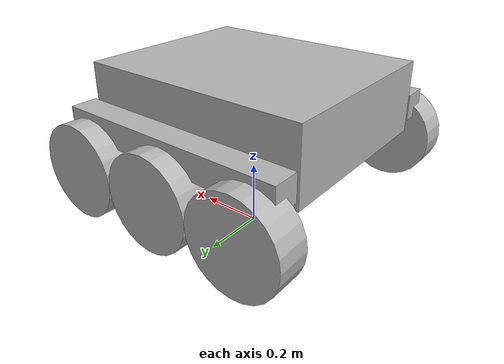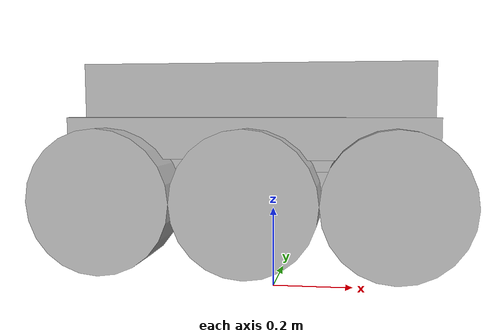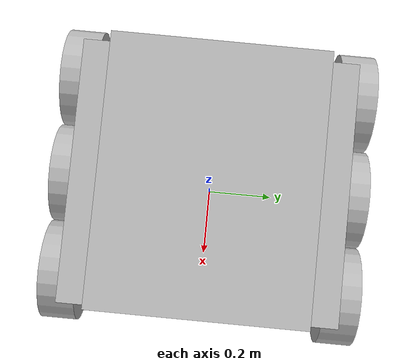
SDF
<?xml version="1.0"?>
<sdf version="1.7">
  <model name="pragyan_rover">
    <static>false</static>
    <self_collide>false</self_collide>
    <allow_auto_disable>false</allow_auto_disable>

    <!-- Pragyan-inspired 6-wheel simulation.
         The safety skid is intentionally low so the rover does not fall through
         deep terrain while remaining free to drive over normal slopes. -->

    <link name="base_link">
      <pose>0 0 0.43 0 0 0</pose>
      <inertial>
        <mass>27</mass>
        <inertia>
          <ixx>2.0</ixx><iyy>1.4</iyy><izz>2.2</izz>
          <ixy>0</ixy><ixz>0</ixz><iyz>0</iyz>
        </inertia>
      </inertial>
      <collision name="base_collision">
        <geometry><box><size>0.72 0.58 0.22</size></box></geometry>
        <surface><friction><ode><mu>1.5</mu><mu2>1.5</mu2></ode></friction></surface>
      </collision>
      <visual name="base_visual">
        <geometry><box><size>0.72 0.58 0.22</size></box></geometry>
      </visual>
    </link>

    <!-- Fixed rocker beams: visually similar to a rocker arrangement,
         but deliberately simplified for stable SIH simulation. -->
    <link name="left_rocker">
      <pose>0 0.34 0.39 0 0 0</pose>
      <inertial>
        <mass>1.2</mass>
        <inertia><ixx>0.08</ixx><iyy>0.08</iyy><izz>0.08</izz><ixy>0</ixy><ixz>0</ixz><iyz>0</iyz></inertia>
      </inertial>
      <collision name="collision"><geometry><box><size>0.72 0.08 0.08</size></box></geometry></collision>
      <visual name="visual"><geometry><box><size>0.72 0.08 0.08</size></box></geometry></visual>
    </link>
    <joint name="left_rocker_fixed" type="fixed">
      <parent>base_link</parent><child>left_rocker</child>
    </joint>

    <link name="right_rocker">
      <pose>0 -0.34 0.39 0 0 0</pose>
      <inertial>
        <mass>1.2</mass>
        <inertia><ixx>0.08</ixx><iyy>0.08</iyy><izz>0.08</izz><ixy>0</ixy><ixz>0</ixz><iyz>0</iyz></inertia>
      </inertial>
      <collision name="collision"><geometry><box><size>0.72 0.08 0.08</size></box></geometry></collision>
      <visual name="visual"><geometry><box><size>0.72 0.08 0.08</size></box></geometry></visual>
    </link>
    <joint name="right_rocker_fixed" type="fixed">
      <parent>base_link</parent><child>right_rocker</child>
    </joint>

    <link name="left_front_wheel">
      <pose>0.28 0.39 0.27 1.5708 0 0</pose>
      <inertial>
        <mass>0.8</mass>
        <inertia><ixx>0.02</ixx><iyy>0.04</iyy><izz>0.04</izz><ixy>0</ixy><ixz>0</ixz><iyz>0</iyz></inertia>
      </inertial>
      <collision name="collision">
        <geometry><cylinder><radius>0.14</radius><length>0.10</length></cylinder></geometry>
        <surface>
          <friction><ode><mu>2.0</mu><mu2>2.0</mu2><slip1>0.0</slip1><slip2>0.0</slip2></ode></friction>
        </surface>
      </collision>
      <visual name="visual"><geometry><cylinder><radius>0.14</radius><length>0.10</length></cylinder></geometry></visual>
    </link>
    <joint name="left_front_wheel_joint" type="revolute">
      <pose>0.28 0.39 0.27 0 0 0</pose>
      <parent>left_rocker</parent>
      <child>left_front_wheel</child>
      <axis>
        <xyz>0 1 0</xyz>
        <limit><lower>-1e16</lower><upper>1e16</upper></limit>
        <dynamics><damping>2.0</damping><friction>0.15</friction></dynamics>
      </axis>
    </joint>

    <link name="left_middle_wheel">
      <pose>0.0 0.39 0.27 1.5708 0 0</pose>
      <inertial>
        <mass>0.8</mass>
        <inertia><ixx>0.02</ixx><iyy>0.04</iyy><izz>0.04</izz><ixy>0</ixy><ixz>0</ixz><iyz>0</iyz></inertia>
      </inertial>
      <collision name="collision">
        <geometry><cylinder><radius>0.14</radius><length>0.10</length></cylinder></geometry>
        <surface>
          <friction><ode><mu>2.0</mu><mu2>2.0</mu2><slip1>0.0</slip1><slip2>0.0</slip2></ode></friction>
        </surface>
      </collision>
      <visual name="visual"><geometry><cylinder><radius>0.14</radius><length>0.10</length></cylinder></geometry></visual>
    </link>
    <joint name="left_middle_wheel_joint" type="revolute">
      <pose>0.00 0.39 0.27 0 0 0</pose>
      <parent>left_rocker</parent>
      <child>left_middle_wheel</child>
      <axis>
        <xyz>0 1 0</xyz>
        <limit><lower>-1e16</lower><upper>1e16</upper></limit>
        <dynamics><damping>2.0</damping><friction>0.15</friction></dynamics>
      </axis>
    </joint>

    <link name="left_rear_wheel">
      <pose>-0.28 0.39 0.27 1.5708 0 0</pose>
      <inertial>
        <mass>0.8</mass>
        <inertia><ixx>0.02</ixx><iyy>0.04</iyy><izz>0.04</izz><ixy>0</ixy><ixz>0</ixz><iyz>0</iyz></inertia>
      </inertial>
      <collision name="collision">
        <geometry><cylinder><radius>0.14</radius><length>0.10</length></cylinder></geometry>
        <surface>
          <friction><ode><mu>2.0</mu><mu2>2.0</mu2><slip1>0.0</slip1><slip2>0.0</slip2></ode></friction>
        </surface>
      </collision>
      <visual name="visual"><geometry><cylinder><radius>0.14</radius><length>0.10</length></cylinder></geometry></visual>
    </link>
    <joint name="left_rear_wheel_joint" type="revolute">
      <pose>-0.28 0.39 0.27 0 0 0</pose>
      <parent>left_rocker</parent>
      <child>left_rear_wheel</child>
      <axis>
        <xyz>0 1 0</xyz>
        <limit><lower>-1e16</lower><upper>1e16</upper></limit>
        <dynamics><damping>2.0</damping><friction>0.15</friction></dynamics>
      </axis>
    </joint>

    <link name="right_front_wheel">
      <pose>0.28 -0.39 0.27 1.5708 0 0</pose>
      <inertial>
        <mass>0.8</mass>
        <inertia><ixx>0.02</ixx><iyy>0.04</iyy><izz>0.04</izz><ixy>0</ixy><ixz>0</ixz><iyz>0</iyz></inertia>
      </inertial>
      <collision name="collision">
        <geometry><cylinder><radius>0.14</radius><length>0.10</length></cylinder></geometry>
        <surface>
          <friction><ode><mu>2.0</mu><mu2>2.0</mu2><slip1>0.0</slip1><slip2>0.0</slip2></ode></friction>
        </surface>
      </collision>
      <visual name="visual"><geometry><cylinder><radius>0.14</radius><length>0.10</length></cylinder></geometry></visual>
    </link>
    <joint name="right_front_wheel_joint" type="revolute">
      <pose>0.28 -0.39 0.27 0 0 0</pose>
      <parent>right_rocker</parent>
      <child>right_front_wheel</child>
      <axis>
        <xyz>0 1 0</xyz>
        <limit><lower>-1e16</lower><upper>1e16</upper></limit>
        <dynamics><damping>2.0</damping><friction>0.15</friction></dynamics>
      </axis>
    </joint>

    <link name="right_middle_wheel">
      <pose>0.0 -0.39 0.27 1.5708 0 0</pose>
      <inertial>
        <mass>0.8</mass>
        <inertia><ixx>0.02</ixx><iyy>0.04</iyy><izz>0.04</izz><ixy>0</ixy><ixz>0</ixz><iyz>0</iyz></inertia>
      </inertial>
      <collision name="collision">
        <geometry><cylinder><radius>0.14</radius><length>0.10</length></cylinder></geometry>
        <surface>
          <friction><ode><mu>2.0</mu><mu2>2.0</mu2><slip1>0.0</slip1><slip2>0.0</slip2></ode></friction>
        </surface>
      </collision>
      <visual name="visual"><geometry><cylinder><radius>0.14</radius><length>0.10</length></cylinder></geometry></visual>
    </link>
    <joint name="right_middle_wheel_joint" type="revolute">
      <pose>0.00 -0.39 0.27 0 0 0</pose>
      <parent>right_rocker</parent>
      <child>right_middle_wheel</child>
      <axis>
        <xyz>0 1 0</xyz>
        <limit><lower>-1e16</lower><upper>1e16</upper></limit>
        <dynamics><damping>2.0</damping><friction>0.15</friction></dynamics>
      </axis>
    </joint>

    <link name="right_rear_wheel">
      <pose>-0.28 -0.39 0.27 1.5708 0 0</pose>
      <inertial>
        <mass>0.8</mass>
        <inertia><ixx>0.02</ixx><iyy>0.04</iyy><izz>0.04</izz><ixy>0</ixy><ixz>0</ixz><iyz>0</iyz></inertia>
      </inertial>
      <collision name="collision">
        <geometry><cylinder><radius>0.14</radius><length>0.10</length></cylinder></geometry>
        <surface>
          <friction><ode><mu>2.0</mu><mu2>2.0</mu2><slip1>0.0</slip1><slip2>0.0</slip2></ode></friction>
        </surface>
      </collision>
      <visual name="visual"><geometry><cylinder><radius>0.14</radius><length>0.10</length></cylinder></geometry></visual>
    </link>
    <joint name="right_rear_wheel_joint" type="revolute">
      <pose>-0.28 -0.39 0.27 0 0 0</pose>
      <parent>right_rocker</parent>
      <child>right_rear_wheel</child>
      <axis>
        <xyz>0 1 0</xyz>
        <limit><lower>-1e16</lower><upper>1e16</upper></limit>
        <dynamics><damping>2.0</damping><friction>0.15</friction></dynamics>
      </axis>
    </joint>

    <!-- Safety belly/skid: catches deep depressions and prevents the rover
         from disappearing into the heightmap. It is intentionally invisible. -->
    <link name="safety_skid">
      <pose>0 0 0.25 0 0 0</pose>
      <inertial>
        <mass>0.5</mass>
        <inertia><ixx>0.01</ixx><iyy>0.01</iyy><izz>0.01</izz><ixy>0</ixy><ixz>0</ixz><iyz>0</iyz></inertia>
      </inertial>
      <collision name="skid_collision">
        <geometry><box><size>0.64 0.50 0.08</size></box></geometry>
        <surface><friction><ode><mu>1.2</mu><mu2>1.2</mu2></ode></friction></surface>
      </collision>
    </link>
    <joint name="safety_skid_fixed" type="fixed">
      <parent>base_link</parent><child>safety_skid</child>
    </joint>

    <link name="imu_link">
      <pose>0 0 0.56 0 0 0</pose>
      <inertial>
        <mass>0.05</mass>
        <inertia><ixx>0.0001</ixx><iyy>0.0001</iyy><izz>0.0001</izz><ixy>0</ixy><ixz>0</ixz><iyz>0</iyz></inertia>
      </inertial>
    </link>
    <joint name="imu_fixed" type="fixed"><parent>base_link</parent><child>imu_link</child></joint>
    <gazebo reference="imu_link">
      <sensor name="imu_sensor" type="imu">
        <always_on>true</always_on><update_rate>100</update_rate>
        <plugin name="imu_plugin" filename="libgazebo_ros_imu_sensor.so">
          <ros><remapping>~/out:=/imu/data</remapping></ros>
          <frame_name>imu_link</frame_name>
        </plugin>
      </sensor>
    </gazebo>

    <link name="lidar_link">
      <pose>0 0 0.68 0 0 0</pose>
      <inertial>
        <mass>0.2</mass>
        <inertia><ixx>0.001</ixx><iyy>0.001</iyy><izz>0.001</izz><ixy>0</ixy><ixz>0</ixz><iyz>0</iyz></inertia>
      </inertial>
    </link>
    <joint name="lidar_fixed" type="fixed"><parent>base_link</parent><child>lidar_link</child></joint>
    <gazebo reference="lidar_link">
      <sensor name="velodyne_sensor" type="ray">
        <always_on>true</always_on><update_rate>10</update_rate>
        <ray>
          <scan>
            <horizontal><samples>720</samples><resolution>1</resolution><min_angle>-3.14159</min_angle><max_angle>3.14159</max_angle></horizontal>
            <vertical><samples>16</samples><resolution>1</resolution><min_angle>-0.26</min_angle><max_angle>0.26</max_angle></vertical>
          </scan>
          <range><min>0.15</min><max>30</max><resolution>0.01</resolution></range>
        </ray>
        <plugin name="ray_sensor_plugin" filename="libgazebo_ros_ray_sensor.so">
          <ros><remapping>~/out:=/velodyne_points</remapping></ros>
          <output_type>sensor_msgs/PointCloud2</output_type>
          <frame_name>lidar_link</frame_name>
        </plugin>
      </sensor>
    </gazebo>

    <link name="thermal_camera_link">
      <pose>0.18 0 0.66 0 -0.35 0</pose>
      <inertial>
        <mass>0.1</mass>
        <inertia><ixx>0.0005</ixx><iyy>0.0005</iyy><izz>0.0005</izz><ixy>0</ixy><ixz>0</ixz><iyz>0</iyz></inertia>
      </inertial>
    </link>
    <joint name="thermal_camera_fixed" type="fixed"><parent>base_link</parent><child>thermal_camera_link</child></joint>
    <gazebo reference="thermal_camera_link">
      <sensor name="thermal_camera_sensor" type="camera">
        <always_on>true</always_on><update_rate>10</update_rate>
        <camera>
          <horizontal_fov>1.0472</horizontal_fov>
          <image><width>320</width><height>240</height><format>L8</format></image>
          <clip><near>0.05</near><far>30</far></clip>
        </camera>
        <plugin name="lunar_thermal_camera_plugin" filename="liblunar_thermal_camera_plugin.so">
          <min_temperature>80</min_temperature><max_temperature>350</max_temperature>
          <noise_sigma>5</noise_sigma><nuc_sigma>1</nuc_sigma>
          <frame_id>thermal_camera_link</frame_id><ground_z>0</ground_z>
        </plugin>
      </sensor>
    </gazebo>

    <link name="left_camera_link">
      <pose>0.18 0.065 0.66 0 -0.35 0</pose>
      <inertial><mass>0.05</mass><inertia><ixx>0.0001</ixx><iyy>0.0001</iyy><izz>0.0001</izz><ixy>0</ixy><ixz>0</ixz><iyz>0</iyz></inertia></inertial>
    </link>
    <link name="right_camera_link">
      <pose>0.18 -0.065 0.66 0 -0.35 0</pose>
      <inertial><mass>0.05</mass><inertia><ixx>0.0001</ixx><iyy>0.0001</iyy><izz>0.0001</izz><ixy>0</ixy><ixz>0</ixz><iyz>0</iyz></inertia></inertial>
    </link>
    <joint name="left_camera_fixed" type="fixed"><parent>base_link</parent><child>left_camera_link</child></joint>
    <joint name="right_camera_fixed" type="fixed"><parent>base_link</parent><child>right_camera_link</child></joint>

    <gazebo reference="left_camera_link">
      <sensor name="left_rgb_camera" type="camera">
        <always_on>true</always_on><update_rate>15</update_rate>
        <camera><horizontal_fov>1.0472</horizontal_fov><image><width>640</width><height>480</height><format>R8G8B8</format></image><clip><near>0.05</near><far>30</far></clip></camera>
        <plugin name="left_camera_plugin" filename="libgazebo_ros_camera.so">
          <ros><remapping>image_raw:=/camera/left/image_raw</remapping><remapping>camera_info:=/camera/left/camera_info</remapping></ros>
          <frame_name>left_camera_link</frame_name>
        </plugin>
      </sensor>
    </gazebo>
    <gazebo reference="right_camera_link">
      <sensor name="right_rgb_camera" type="camera">
        <always_on>true</always_on><update_rate>15</update_rate>
        <camera><horizontal_fov>1.0472</horizontal_fov><image><width>640</width><height>480</height><format>R8G8B8</format></image><clip><near>0.05</near><far>30</far></clip></camera>
        <plugin name="right_camera_plugin" filename="libgazebo_ros_camera.so">
          <ros><remapping>image_raw:=/camera/right/image_raw</remapping><remapping>camera_info:=/camera/right/camera_info</remapping></ros>
          <frame_name>right_camera_link</frame_name>
        </plugin>
      </sensor>
    </gazebo>

    <!-- Simple stable differential drive: middle wheels are powered.
         Front/rear wheels remain passive but physically connected. -->
    <plugin name="diff_drive" filename="libgazebo_ros_diff_drive.so">
  <ros>
    <remapping>cmd_vel:=/cmd_vel</remapping>
    <remapping>odom:=/wheel_odom</remapping>
  </ros>

  <update_rate>50</update_rate>

  <left_joint>left_middle_wheel_joint</left_joint>
  <right_joint>right_middle_wheel_joint</right_joint>

  <wheel_separation>0.78</wheel_separation>
  <wheel_diameter>0.28</wheel_diameter>

  <max_wheel_torque>100</max_wheel_torque>
  <max_wheel_acceleration>10</max_wheel_acceleration>

  <command_topic>cmd_vel</command_topic>
  <odometry_topic>wheel_odom</odometry_topic>
  <robot_base_frame>base_link</robot_base_frame>

  <publish_odom>true</publish_odom>
  <publish_tf>true</publish_tf>
  <publish_wheel_tf>false</publish_wheel_tf>
</plugin>

    <plugin name="joint_state_publisher" filename="libgazebo_ros_joint_state_publisher.so">
      <ros><remapping>~/out:=/joint_states</remapping></ros>
      <update_rate>30</update_rate>
      <joint_name>left_front_wheel_joint</joint_name><joint_name>left_middle_wheel_joint</joint_name><joint_name>left_rear_wheel_joint</joint_name>
      <joint_name>right_front_wheel_joint</joint_name><joint_name>right_middle_wheel_joint</joint_name><joint_name>right_rear_wheel_joint</joint_name>
    </plugin>
  </model>
</sdf>
